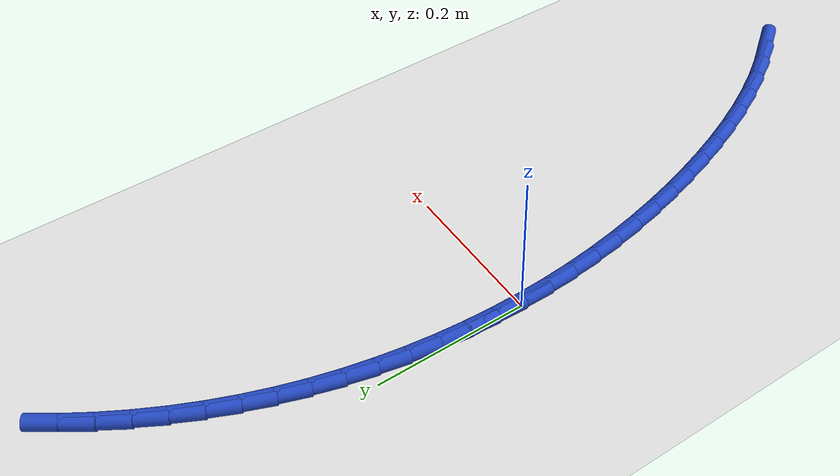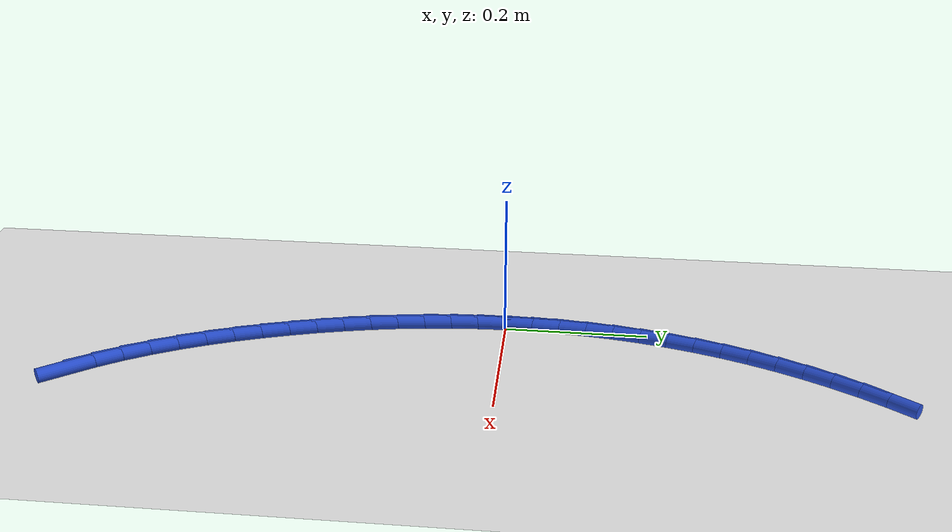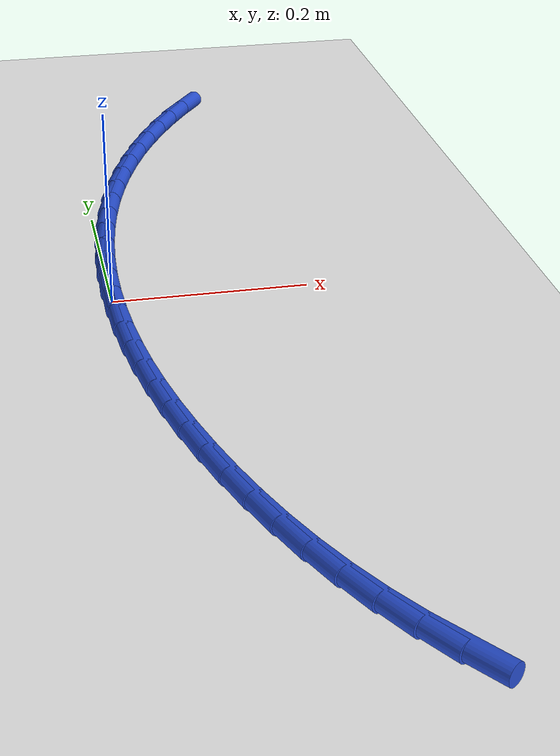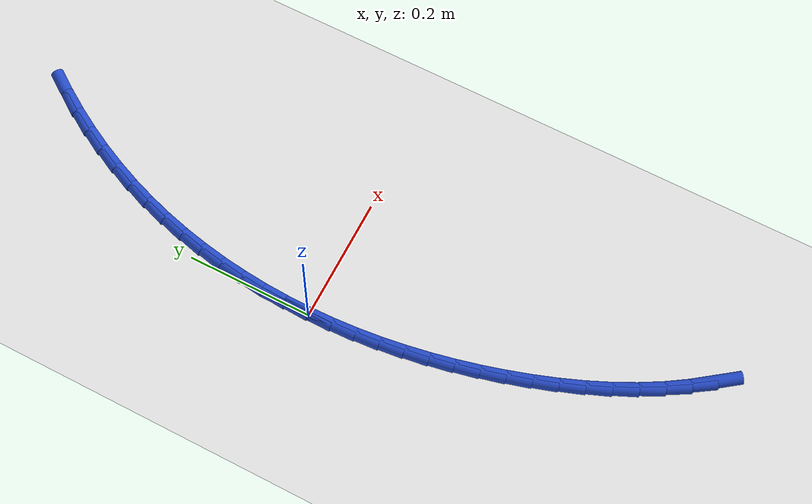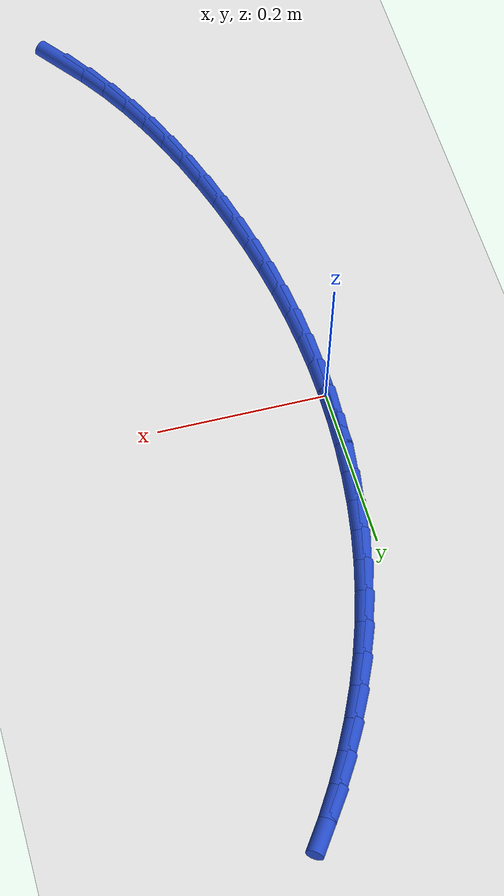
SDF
<sdf version="1.6">
 <world name="default">
  <model name="ground_plane">
   <static>1</static>
   <link name="link">
    <collision name="collision">
     <geometry><plane><normal>0 0 1</normal><size>100 100</size></plane></geometry>
     <surface><friction><ode><mu>100</mu><mu2>50</mu2></ode></friction></surface>
    </collision>
    <visual name="visual">
     <cast_shadows>0</cast_shadows>
     <geometry><plane><normal>0 0 1</normal><size>100 100</size></plane></geometry>
     <material>
      <script><uri>file://media/materials/scripts/gazebo.material</uri><name>Gazebo/WhiteGlow</name></script>
     </material>
    </visual>
   </link>
  </model>
  <model name="line">
   <link name="link_0">
    <pose>-1.3010426069826053e-17 3.469446951953614e-17 0.01 0 1.57 1.5600942453260056</pose>
    <collision name="collision">
     <geometry><cylinder><radius>0.01</radius><length>0.08</length></cylinder></geometry>
    </collision>
    <visual name="visual">
     <material>
      <script><name>Gazebo/Blue</name><uri>file://media/materials/scripts/gazebo.material</uri></script>
     </material>
     <geometry><cylinder><radius>0.01</radius><length>0.08</length></cylinder></geometry>
    </visual>
   </link>
   <link name="link_1">
    <pose>0.0004085112136920327 0.03816973534958362 0.01 0 1.57 1.521251000662741</pose>
    <collision name="collision">
     <geometry><cylinder><radius>0.01</radius><length>0.08</length></cylinder></geometry>
    </collision>
    <visual name="visual">
     <material>
      <script><name>Gazebo/Blue</name><uri>file://media/materials/scripts/gazebo.material</uri></script>
     </material>
     <geometry><cylinder><radius>0.01</radius><length>0.08</length></cylinder></geometry>
    </visual>
   </link>
   <link name="link_2">
    <pose>0.0023015739740211098 0.07634717129692392 0.01 0 1.57 1.4816920491337497</pose>
    <collision name="collision">
     <geometry><cylinder><radius>0.01</radius><length>0.08</length></cylinder></geometry>
    </collision>
    <visual name="visual">
     <material>
      <script><name>Gazebo/Blue</name><uri>file://media/materials/scripts/gazebo.material</uri></script>
     </material>
     <geometry><cylinder><radius>0.01</radius><length>0.08</length></cylinder></geometry>
    </visual>
   </link>
   <link name="link_3">
    <pose>0.0057064648923161035 0.11445841700049171 0.01 0 1.57 1.4413207656854696</pose>
    <collision name="collision">
     <geometry><cylinder><radius>0.01</radius><length>0.08</length></cylinder></geometry>
    </collision>
    <visual name="visual">
     <material>
      <script><name>Gazebo/Blue</name><uri>file://media/materials/scripts/gazebo.material</uri></script>
     </material>
     <geometry><cylinder><radius>0.01</radius><length>0.08</length></cylinder></geometry>
    </visual>
   </link>
   <link name="link_4">
    <pose>0.010650460579905903 0.15242958161875791 0.01 0 1.57 1.4000478369320812</pose>
    <collision name="collision">
     <geometry><cylinder><radius>0.01</radius><length>0.08</length></cylinder></geometry>
    </collision>
    <visual name="visual">
     <material>
      <script><name>Gazebo/Blue</name><uri>file://media/materials/scripts/gazebo.material</uri></script>
     </material>
     <geometry><cylinder><radius>0.01</radius><length>0.08</length></cylinder></geometry>
    </visual>
   </link>
   <link name="link_5">
    <pose>0.017160837648119404 0.1901867743101935 0.01 0 1.57 1.357792749813846</pose>
    <collision name="collision">
     <geometry><cylinder><radius>0.01</radius><length>0.08</length></cylinder></geometry>
    </collision>
    <visual name="visual">
     <material>
      <script><name>Gazebo/Blue</name><uri>file://media/materials/scripts/gazebo.material</uri></script>
     </material>
     <geometry><cylinder><radius>0.01</radius><length>0.08</length></cylinder></geometry>
    </visual>
   </link>
   <link name="link_6">
    <pose>0.02526487270828548 0.22765610423326926 0.01 0 1.57 1.3144856001564096</pose>
    <collision name="collision">
     <geometry><cylinder><radius>0.01</radius><length>0.08</length></cylinder></geometry>
    </collision>
    <visual name="visual">
     <material>
      <script><name>Gazebo/Blue</name><uri>file://media/materials/scripts/gazebo.material</uri></script>
     </material>
     <geometry><cylinder><radius>0.01</radius><length>0.08</length></cylinder></geometry>
    </visual>
   </link>
   <link name="link_7">
    <pose>0.03498984237173304 0.26476368054645616 0.01 0 1.57 1.2700692067478376</pose>
    <collision name="collision">
     <geometry><cylinder><radius>0.01</radius><length>0.08</length></cylinder></geometry>
    </collision>
    <visual name="visual">
     <material>
      <script><name>Gazebo/Blue</name><uri>file://media/materials/scripts/gazebo.material</uri></script>
     </material>
     <geometry><cylinder><radius>0.01</radius><length>0.08</length></cylinder></geometry>
    </visual>
   </link>
   <link name="link_8">
    <pose>0.046363023249790934 0.30143561240822503 0.01 0 1.57 1.2246488011370402</pose>
    <collision name="collision">
     <geometry><cylinder><radius>0.01</radius><length>0.08</length></cylinder></geometry>
    </collision>
    <visual name="visual">
     <material>
      <script><name>Gazebo/Blue</name><uri>file://media/materials/scripts/gazebo.material</uri></script>
     </material>
     <geometry><cylinder><radius>0.01</radius><length>0.08</length></cylinder></geometry>
    </visual>
   </link>
   <link name="link_9">
    <pose>0.059406061588320576 0.33759909037641694 0.01 0 1.57 1.1793029908083075</pose>
    <collision name="collision">
     <geometry><cylinder><radius>0.01</radius><length>0.08</length></cylinder></geometry>
    </collision>
    <visual name="visual">
     <material>
      <script><name>Gazebo/Blue</name><uri>file://media/materials/scripts/gazebo.material</uri></script>
     </material>
     <geometry><cylinder><radius>0.01</radius><length>0.08</length></cylinder></geometry>
    </visual>
   </link>
   <link name="link_10">
    <pose>0.07409784828123467 0.37318951684004603 0.01 0 1.57 1.1344804346347401</pose>
    <collision name="collision">
     <geometry><cylinder><radius>0.01</radius><length>0.08</length></cylinder></geometry>
    </collision>
    <visual name="visual">
     <material>
      <script><name>Gazebo/Blue</name><uri>file://media/materials/scripts/gazebo.material</uri></script>
     </material>
     <geometry><cylinder><radius>0.01</radius><length>0.08</length></cylinder></geometry>
    </visual>
   </link>
   <link name="link_11">
    <pose>0.09039765439082144 0.40814606248233115 0.01 0 1.57 1.090109964067773</pose>
    <collision name="collision">
     <geometry><cylinder><radius>0.01</radius><length>0.08</length></cylinder></geometry>
    </collision>
    <visual name="visual">
     <material>
      <script><name>Gazebo/Blue</name><uri>file://media/materials/scripts/gazebo.material</uri></script>
     </material>
     <geometry><cylinder><radius>0.01</radius><length>0.08</length></cylinder></geometry>
    </visual>
   </link>
   <link name="link_12">
    <pose>0.10826464821212468 0.4424079177245401 0.01 0 1.57 1.0461138105548942</pose>
    <collision name="collision">
     <geometry><cylinder><radius>0.01</radius><length>0.08</length></cylinder></geometry>
    </collision>
    <visual name="visual">
     <material>
      <script><name>Gazebo/Blue</name><uri>file://media/materials/scripts/gazebo.material</uri></script>
     </material>
     <geometry><cylinder><radius>0.01</radius><length>0.08</length></cylinder></geometry>
    </visual>
   </link>
   <link name="link_13">
    <pose>0.12765799804018843 0.4759142729879414 0.01 0 1.57 1.0024115345054043</pose>
    <collision name="collision">
     <geometry><cylinder><radius>0.01</radius><length>0.08</length></cylinder></geometry>
    </collision>
    <visual name="visual">
     <material>
      <script><name>Gazebo/Blue</name><uri>file://media/materials/scripts/gazebo.material</uri></script>
     </material>
     <geometry><cylinder><radius>0.01</radius><length>0.08</length></cylinder></geometry>
    </visual>
   </link>
   <link name="link_14">
    <pose>0.14853687217005654 0.5086043186938034 0.01 0 1.57 0.9589211472543481</pose>
    <collision name="collision">
     <geometry><cylinder><radius>0.01</radius><length>0.08</length></cylinder></geometry>
    </collision>
    <visual name="visual">
     <material>
      <script><name>Gazebo/Blue</name><uri>file://media/materials/scripts/gazebo.material</uri></script>
     </material>
     <geometry><cylinder><radius>0.01</radius><length>0.08</length></cylinder></geometry>
    </visual>
   </link>
   <link name="link_184">
    <pose>0.18096637568424195 -0.5756598752397405 0.01 0 1.57 -0.9287299843590439</pose>
    <collision name="collision">
     <geometry><cylinder><radius>0.01</radius><length>0.08</length></cylinder></geometry>
    </collision>
    <visual name="visual">
     <material>
      <script><name>Gazebo/Blue</name><uri>file://media/materials/scripts/gazebo.material</uri></script>
     </material>
     <geometry><cylinder><radius>0.01</radius><length>0.08</length></cylinder></geometry>
    </visual>
   </link>
   <link name="link_185">
    <pose>0.15831565594972014 -0.5453684689200592 0.01 0 1.57 -0.9923748639244797</pose>
    <collision name="collision">
     <geometry><cylinder><radius>0.01</radius><length>0.08</length></cylinder></geometry>
    </collision>
    <visual name="visual">
     <material>
      <script><name>Gazebo/Blue</name><uri>file://media/materials/scripts/gazebo.material</uri></script>
     </material>
     <geometry><cylinder><radius>0.01</radius><length>0.08</length></cylinder></geometry>
    </visual>
   </link>
   <link name="link_186">
    <pose>0.13753358492790774 -0.513538779248452 0.01 0 1.57 -1.05037345709818</pose>
    <collision name="collision">
     <geometry><cylinder><radius>0.01</radius><length>0.08</length></cylinder></geometry>
    </collision>
    <visual name="visual">
     <material>
      <script><name>Gazebo/Blue</name><uri>file://media/materials/scripts/gazebo.material</uri></script>
     </material>
     <geometry><cylinder><radius>0.01</radius><length>0.08</length></cylinder></geometry>
    </visual>
   </link>
   <link name="link_187">
    <pose>0.118522671494416 -0.48036806713372965 0.01 0 1.57 -1.102960813602067</pose>
    <collision name="collision">
     <geometry><cylinder><radius>0.01</radius><length>0.08</length></cylinder></geometry>
    </collision>
    <visual name="visual">
     <material>
      <script><name>Gazebo/Blue</name><uri>file://media/materials/scripts/gazebo.material</uri></script>
     </material>
     <geometry><cylinder><radius>0.01</radius><length>0.08</length></cylinder></geometry>
    </visual>
   </link>
   <link name="link_188">
    <pose>0.10118542452485611 -0.4460535934847016 0.01 0 1.57 -1.150453803004645</pose>
    <collision name="collision">
     <geometry><cylinder><radius>0.01</radius><length>0.08</length></cylinder></geometry>
    </collision>
    <visual name="visual">
     <material>
      <script><name>Gazebo/Blue</name><uri>file://media/materials/scripts/gazebo.material</uri></script>
     </material>
     <geometry><cylinder><radius>0.01</radius><length>0.08</length></cylinder></geometry>
    </visual>
   </link>
   <link name="link_189">
    <pose>0.0854243528948394 -0.4107926192101782 0.01 0 1.57 -1.1932067424271815</pose>
    <collision name="collision">
     <geometry><cylinder><radius>0.01</radius><length>0.08</length></cylinder></geometry>
    </collision>
    <visual name="visual">
     <material>
      <script><name>Gazebo/Blue</name><uri>file://media/materials/scripts/gazebo.material</uri></script>
     </material>
     <geometry><cylinder><radius>0.01</radius><length>0.08</length></cylinder></geometry>
    </visual>
   </link>
   <link name="link_190">
    <pose>0.07114196547997703 -0.37478240521896905 0.01 0 1.57 -1.231579328897963</pose>
    <collision name="collision">
     <geometry><cylinder><radius>0.01</radius><length>0.08</length></cylinder></geometry>
    </collision>
    <visual name="visual">
     <material>
      <script><name>Gazebo/Blue</name><uri>file://media/materials/scripts/gazebo.material</uri></script>
     </material>
     <geometry><cylinder><radius>0.01</radius><length>0.08</length></cylinder></geometry>
    </visual>
   </link>
   <link name="link_191">
    <pose>0.05824077115588026 -0.33822021241988426 0.01 0 1.57 -1.2659217430224838</pose>
    <collision name="collision">
     <geometry><cylinder><radius>0.01</radius><length>0.08</length></cylinder></geometry>
    </collision>
    <visual name="visual">
     <material>
      <script><name>Gazebo/Blue</name><uri>file://media/materials/scripts/gazebo.material</uri></script>
     </material>
     <geometry><cylinder><radius>0.01</radius><length>0.08</length></cylinder></geometry>
    </visual>
   </link>
   <link name="link_192">
    <pose>0.046623471992751 -0.3013030255818504 0.01 0 1.57 -1.2978375304020233</pose>
    <collision name="collision">
     <geometry><cylinder><radius>0.01</radius><length>0.08</length></cylinder></geometry>
    </collision>
    <visual name="visual">
     <material>
      <script><name>Gazebo/Blue</name><uri>file://media/materials/scripts/gazebo.material</uri></script>
     </material>
     <geometry><cylinder><radius>0.01</radius><length>0.08</length></cylinder></geometry>
    </visual>
   </link>
   <link name="link_193">
    <pose>0.036229653849591606 -0.2641751101655057 0.01 0 1.57 -1.3302862089463332</pose>
    <collision name="collision">
     <geometry><cylinder><radius>0.01</radius><length>0.08</length></cylinder></geometry>
    </collision>
    <visual name="visual">
     <material>
      <script><name>Gazebo/Blue</name><uri>file://media/materials/scripts/gazebo.material</uri></script>
     </material>
     <geometry><cylinder><radius>0.01</radius><length>0.08</length></cylinder></geometry>
    </visual>
   </link>
   <link name="link_194">
    <pose>0.027079279389935172 -0.22686584621232087 0.01 0 1.57 -1.3636419174147916</pose>
    <collision name="collision">
     <geometry><cylinder><radius>0.01</radius><length>0.08</length></cylinder></geometry>
    </collision>
    <visual name="visual">
     <material>
      <script><name>Gazebo/Blue</name><uri>file://media/materials/scripts/gazebo.material</uri></script>
     </material>
     <geometry><cylinder><radius>0.01</radius><length>0.08</length></cylinder></geometry>
    </visual>
   </link>
   <link name="link_195">
    <pose>0.019202895935468135 -0.1893894847362318 0.01 0 1.57 -1.397892757178119</pose>
    <collision name="collision">
     <geometry><cylinder><radius>0.01</radius><length>0.08</length></cylinder></geometry>
    </collision>
    <visual name="visual">
     <material>
      <script><name>Gazebo/Blue</name><uri>file://media/materials/scripts/gazebo.material</uri></script>
     </material>
     <geometry><cylinder><radius>0.01</radius><length>0.08</length></cylinder></geometry>
    </visual>
   </link>
   <link name="link_196">
    <pose>0.012631050807876952 -0.15176027675117515 0.01 0 1.57 -1.4330180925141827</pose>
    <collision name="collision">
     <geometry><cylinder><radius>0.01</radius><length>0.08</length></cylinder></geometry>
    </collision>
    <visual name="visual">
     <material>
      <script><name>Gazebo/Blue</name><uri>file://media/materials/scripts/gazebo.material</uri></script>
     </material>
     <geometry><cylinder><radius>0.01</radius><length>0.08</length></cylinder></geometry>
    </visual>
   </link>
   <link name="link_197">
    <pose>0.007394291328848092 -0.11399247327108725 0.01 0 1.57 -1.468987831832132</pose>
    <collision name="collision">
     <geometry><cylinder><radius>0.01</radius><length>0.08</length></cylinder></geometry>
    </collision>
    <visual name="visual">
     <material>
      <script><name>Gazebo/Blue</name><uri>file://media/materials/scripts/gazebo.material</uri></script>
     </material>
     <geometry><cylinder><radius>0.01</radius><length>0.08</length></cylinder></geometry>
    </visual>
   </link>
   <link name="link_198">
    <pose>0.0035231648200680036 -0.0761003253099045 0.01 0 1.57 -1.5057618474682681</pose>
    <collision name="collision">
     <geometry><cylinder><radius>0.01</radius><length>0.08</length></cylinder></geometry>
    </collision>
    <visual name="visual">
     <material>
      <script><name>Gazebo/Blue</name><uri>file://media/materials/scripts/gazebo.material</uri></script>
     </material>
     <geometry><cylinder><radius>0.01</radius><length>0.08</length></cylinder></geometry>
    </visual>
   </link>
   <link name="link_199">
    <pose>0.0010482186032231503 -0.03809808388156326 0.01 0 1.57 -1.543289583277375</pose>
    <collision name="collision">
     <geometry><cylinder><radius>0.01</radius><length>0.08</length></cylinder></geometry>
    </collision>
    <visual name="visual">
     <material>
      <script><name>Gazebo/Blue</name><uri>file://media/materials/scripts/gazebo.material</uri></script>
     </material>
     <geometry><cylinder><radius>0.01</radius><length>0.08</length></cylinder></geometry>
    </visual>
   </link>
   <link name="link_200">
    <pose>-1.734723475976807e-17 1.3183898417423734e-16 0.01 0 1.57 1.5600827552951715</pose>
    <collision name="collision">
     <geometry><cylinder><radius>0.01</radius><length>0.08</length></cylinder></geometry>
    </collision>
    <visual name="visual">
     <material>
      <script><name>Gazebo/Blue</name><uri>file://media/materials/scripts/gazebo.material</uri></script>
     </material>
     <geometry><cylinder><radius>0.01</radius><length>0.08</length></cylinder></geometry>
    </visual>
   </link>
   <link name="link_201">
    <pose>0.0004090563320849859 0.038179675320850086 0.01 0 1.57 1.5600827552951715</pose>
    <collision name="collision">
     <geometry><cylinder><radius>0.01</radius><length>0.08</length></cylinder></geometry>
    </collision>
    <visual name="visual">
     <material>
      <script><name>Gazebo/Blue</name><uri>file://media/materials/scripts/gazebo.material</uri></script>
     </material>
     <geometry><cylinder><radius>0.01</radius><length>0.08</length></cylinder></geometry>
    </visual>
   </link>
  </model>
 </world>
</sdf>
